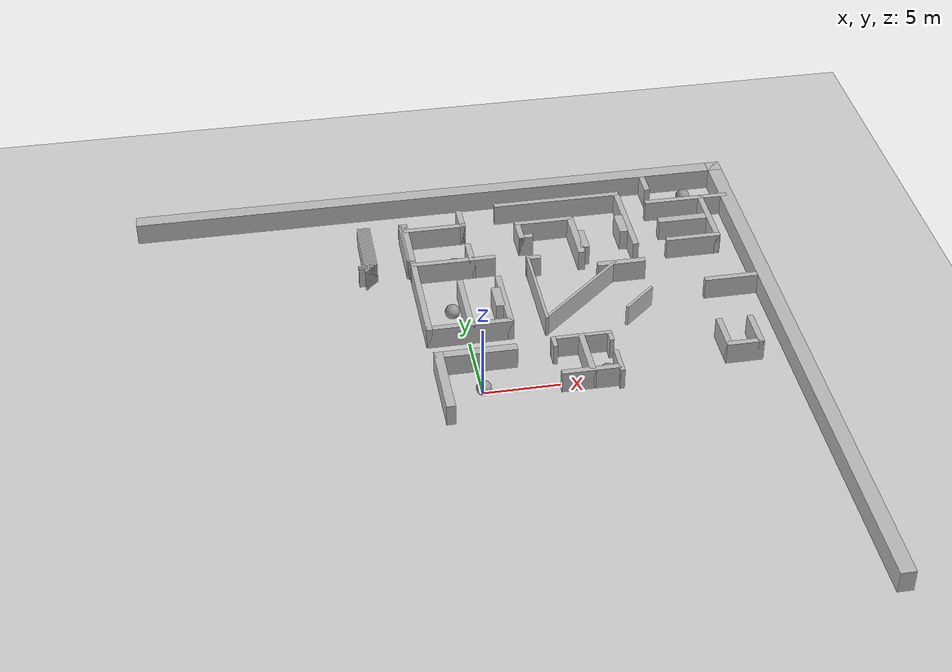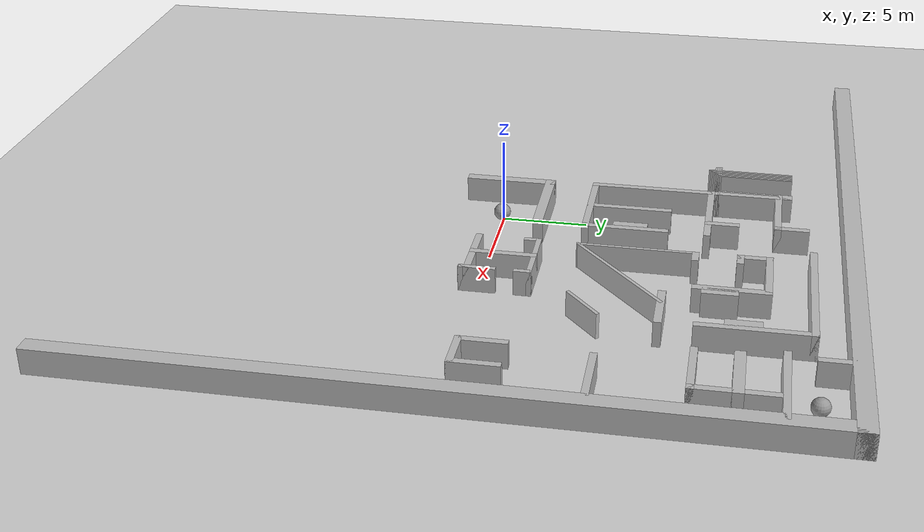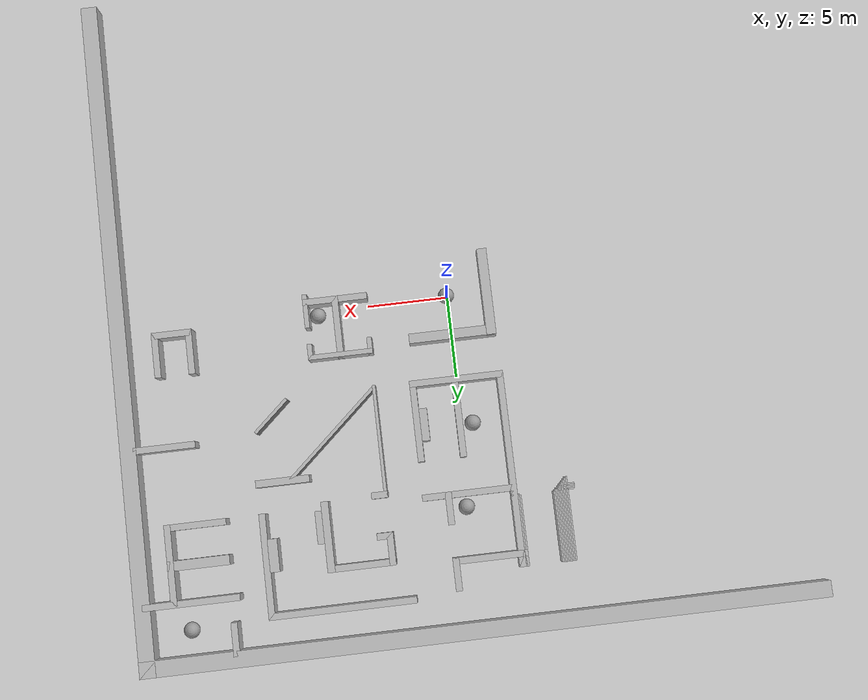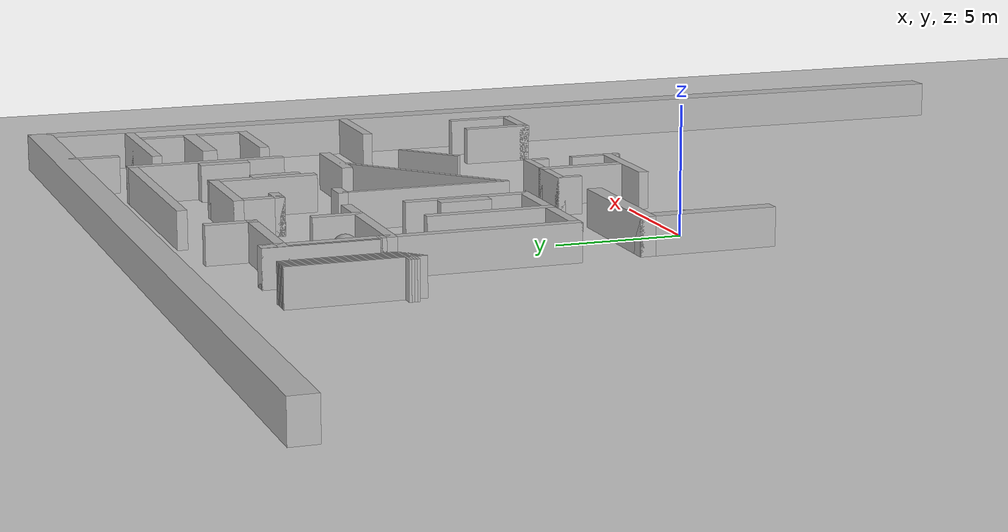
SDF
<sdf version="1.7">
 <world name="test_world">
  <model name="ground_plane">
   <static>1</static>
   <link name="link">
    <collision name="collision">
     <geometry><plane><normal>0 0 1</normal><size>100 100</size></plane></geometry>
    </collision>
    <visual name="visual">
     <geometry><plane><normal>0 0 1</normal><size>100 100</size></plane></geometry>
     <material>
      <script>
       <uri>file://media/materials/scripts/gazebo.material</uri>
       <name>__default__</name>
       <n>Gazebo/Grey</n>
      </script>
     </material>
    </visual>
   </link>
  </model>
  <model name="outer_top">
   <static>1</static>
   <pose>0 20.5 0.75 0 -0 0</pose>
   <link name="link">
    <collision name="collision"><geometry><box><size>42 1 1.5</size></box></geometry></collision>
    <visual name="visual">
     <geometry><box><size>42 1 1.5</size></box></geometry>
     <material>
      <script>
       <uri>file://media/materials/scripts/gazebo.material</uri>
       <name>__default__</name>
       <n>Gazebo/Grey</n>
      </script>
     </material>
    </visual>
   </link>
  </model>
  <model name="outer_right">
   <static>1</static>
   <pose>20.5 0 0.75 0 -0 0</pose>
   <link name="link">
    <collision name="collision"><geometry><box><size>1 42 1.5</size></box></geometry></collision>
    <visual name="visual">
     <geometry><box><size>1 42 1.5</size></box></geometry>
     <material>
      <script>
       <uri>file://media/materials/scripts/gazebo.material</uri>
       <name>__default__</name>
       <n>Gazebo/Grey</n>
      </script>
     </material>
    </visual>
   </link>
  </model>
  <model name="hw_17">
   <static>1</static>
   <pose>-5.9 12.4 0.75 0 -0 0</pose>
   <link name="link">
    <collision name="collision"><geometry><box><size>0.9 0.1 1.5</size></box></geometry></collision>
    <visual name="visual">
     <geometry><box><size>0.9 0.1 1.5</size></box></geometry>
     <material>
      <script>
       <uri>file://media/materials/scripts/gazebo.material</uri>
       <name>__default__</name>
       <n>Gazebo/Grey</n>
      </script>
     </material>
    </visual>
   </link>
  </model>
  <model name="hw_18">
   <static>1</static>
   <pose>-5.85 12.5 0.75 0 -0 0</pose>
   <link name="link">
    <collision name="collision"><geometry><box><size>1 0.1 1.5</size></box></geometry></collision>
    <visual name="visual">
     <geometry><box><size>1 0.1 1.5</size></box></geometry>
     <material>
      <script>
       <uri>file://media/materials/scripts/gazebo.material</uri>
       <name>__default__</name>
       <n>Gazebo/Grey</n>
      </script>
     </material>
    </visual>
   </link>
  </model>
  <model name="hw_19">
   <static>1</static>
   <pose>-5.8 12.6 0.75 0 -0 0</pose>
   <link name="link">
    <collision name="collision"><geometry><box><size>1.1 0.1 1.5</size></box></geometry></collision>
    <visual name="visual">
     <geometry><box><size>1.1 0.1 1.5</size></box></geometry>
     <material>
      <script>
       <uri>file://media/materials/scripts/gazebo.material</uri>
       <name>__default__</name>
       <n>Gazebo/Grey</n>
      </script>
     </material>
    </visual>
   </link>
  </model>
  <model name="hw_20">
   <static>1</static>
   <pose>-5.75 12.7 0.75 0 -0 0</pose>
   <link name="link">
    <collision name="collision"><geometry><box><size>1.2 0.1 1.5</size></box></geometry></collision>
    <visual name="visual">
     <geometry><box><size>1.2 0.1 1.5</size></box></geometry>
     <material>
      <script>
       <uri>file://media/materials/scripts/gazebo.material</uri>
       <name>__default__</name>
       <n>Gazebo/Grey</n>
      </script>
     </material>
    </visual>
   </link>
  </model>
  <model name="hw_21">
   <static>1</static>
   <pose>-2.75 16.75 0.75 0 -0 0</pose>
   <link name="link">
    <collision name="collision"><geometry><box><size>0.6 0.6 1.5</size></box></geometry></collision>
    <visual name="visual">
     <geometry><box><size>0.6 0.6 1.5</size></box></geometry>
     <material>
      <script>
       <uri>file://media/materials/scripts/gazebo.material</uri>
       <name>__default__</name>
       <n>Gazebo/Grey</n>
      </script>
     </material>
    </visual>
   </link>
  </model>
  <model name="hw_22">
   <static>1</static>
   <pose>-0.75 16.25 0.75 0 -0 0</pose>
   <link name="link">
    <collision name="collision"><geometry><box><size>4.6 0.4 1.5</size></box></geometry></collision>
    <visual name="visual">
     <geometry><box><size>4.6 0.4 1.5</size></box></geometry>
     <material>
      <script>
       <uri>file://media/materials/scripts/gazebo.material</uri>
       <name>__default__</name>
       <n>Gazebo/Grey</n>
      </script>
     </material>
    </visual>
   </link>
  </model>
  <model name="hw_26">
   <static>1</static>
   <pose>-2.7 12.7 0.75 0 -0 0</pose>
   <link name="link">
    <collision name="collision"><geometry><box><size>0.5 0.1 1.5</size></box></geometry></collision>
    <visual name="visual">
     <geometry><box><size>0.5 0.1 1.5</size></box></geometry>
     <material>
      <script>
       <uri>file://media/materials/scripts/gazebo.material</uri>
       <name>__default__</name>
       <n>Gazebo/Grey</n>
      </script>
     </material>
    </visual>
   </link>
  </model>
  <model name="hw_27">
   <static>1</static>
   <pose>-2.65 12.55 0.75 0 -0 0</pose>
   <link name="link">
    <collision name="collision"><geometry><box><size>0.4 0.2 1.5</size></box></geometry></collision>
    <visual name="visual">
     <geometry><box><size>0.4 0.2 1.5</size></box></geometry>
     <material>
      <script>
       <uri>file://media/materials/scripts/gazebo.material</uri>
       <name>__default__</name>
       <n>Gazebo/Grey</n>
      </script>
     </material>
    </visual>
   </link>
  </model>
  <model name="hw_28">
   <static>1</static>
   <pose>0.05 12.25 0.75 0 -0 0</pose>
   <link name="link">
    <collision name="collision"><geometry><box><size>5.8 0.4 1.5</size></box></geometry></collision>
    <visual name="visual">
     <geometry><box><size>5.8 0.4 1.5</size></box></geometry>
     <material>
      <script>
       <uri>file://media/materials/scripts/gazebo.material</uri>
       <name>__default__</name>
       <n>Gazebo/Grey</n>
      </script>
     </material>
    </visual>
   </link>
  </model>
  <model name="hw_29">
   <static>1</static>
   <pose>0.05 5.25 0.75 0 -0 0</pose>
   <link name="link">
    <collision name="collision"><geometry><box><size>5.8 0.4 1.5</size></box></geometry></collision>
    <visual name="visual">
     <geometry><box><size>5.8 0.4 1.5</size></box></geometry>
     <material>
      <script>
       <uri>file://media/materials/scripts/gazebo.material</uri>
       <name>__default__</name>
       <n>Gazebo/Grey</n>
      </script>
     </material>
    </visual>
   </link>
  </model>
  <model name="hw_30">
   <static>1</static>
   <pose>-0.05 2.45 0.75 0 -0 0</pose>
   <link name="link">
    <collision name="collision"><geometry><box><size>5.4 0.6 1.5</size></box></geometry></collision>
    <visual name="visual">
     <geometry><box><size>5.4 0.6 1.5</size></box></geometry>
     <material>
      <script>
       <uri>file://media/materials/scripts/gazebo.material</uri>
       <name>__default__</name>
       <n>Gazebo/Grey</n>
      </script>
     </material>
    </visual>
   </link>
  </model>
  <model name="hw_32">
   <static>1</static>
   <pose>8.45 18.25 0.75 0 -0 0</pose>
   <link name="link">
    <collision name="collision"><geometry><box><size>9 0.4 1.5</size></box></geometry></collision>
    <visual name="visual">
     <geometry><box><size>9 0.4 1.5</size></box></geometry>
     <material>
      <script>
       <uri>file://media/materials/scripts/gazebo.material</uri>
       <name>__default__</name>
       <n>Gazebo/Grey</n>
      </script>
     </material>
    </visual>
   </link>
  </model>
  <model name="hw_46">
   <static>1</static>
   <pose>5.45 14.25 0.75 0 -0 0</pose>
   <link name="link">
    <collision name="collision"><geometry><box><size>1 0.4 1.5</size></box></geometry></collision>
    <visual name="visual">
     <geometry><box><size>1 0.4 1.5</size></box></geometry>
     <material>
      <script>
       <uri>file://media/materials/scripts/gazebo.material</uri>
       <name>__default__</name>
       <n>Gazebo/Grey</n>
      </script>
     </material>
    </visual>
   </link>
  </model>
  <model name="hw_47">
   <static>1</static>
   <pose>6.95 2.9 0.75 0 -0 0</pose>
   <link name="link">
    <collision name="collision"><geometry><box><size>4 0.3 1.5</size></box></geometry></collision>
    <visual name="visual">
     <geometry><box><size>4 0.3 1.5</size></box></geometry>
     <material>
      <script>
       <uri>file://media/materials/scripts/gazebo.material</uri>
       <name>__default__</name>
       <n>Gazebo/Grey</n>
      </script>
     </material>
    </visual>
   </link>
  </model>
  <model name="hw_48">
   <static>1</static>
   <pose>6.95 -0.55 0.75 0 -0 0</pose>
   <link name="link">
    <collision name="collision"><geometry><box><size>4 0.4 1.5</size></box></geometry></collision>
    <visual name="visual">
     <geometry><box><size>4 0.4 1.5</size></box></geometry>
     <material>
      <script>
       <uri>file://media/materials/scripts/gazebo.material</uri>
       <name>__default__</name>
       <n>Gazebo/Grey</n>
      </script>
     </material>
    </visual>
   </link>
  </model>
  <model name="hw_52">
   <static>1</static>
   <pose>7 15.85 0.75 0 -0 0</pose>
   <link name="link">
    <collision name="collision"><geometry><box><size>4.1 0.4 1.5</size></box></geometry></collision>
    <visual name="visual">
     <geometry><box><size>4.1 0.4 1.5</size></box></geometry>
     <material>
      <script>
       <uri>file://media/materials/scripts/gazebo.material</uri>
       <name>__default__</name>
       <n>Gazebo/Grey</n>
      </script>
     </material>
    </visual>
   </link>
  </model>
  <model name="hw_104">
   <static>1</static>
   <pose>8.8 -0.9 0.75 0 -0 0</pose>
   <link name="link">
    <collision name="collision"><geometry><box><size>0.3 0.3 1.5</size></box></geometry></collision>
    <visual name="visual">
     <geometry><box><size>0.3 0.3 1.5</size></box></geometry>
     <material>
      <script>
       <uri>file://media/materials/scripts/gazebo.material</uri>
       <name>__default__</name>
       <n>Gazebo/Grey</n>
      </script>
     </material>
    </visual>
   </link>
  </model>
  <model name="hw_121">
   <static>1</static>
   <pose>11.3 10.2356 0.75 0 -0 0</pose>
   <link name="link">
    <collision name="collision"><geometry><box><size>3.3 0.447718 1.5</size></box></geometry></collision>
    <visual name="visual">
     <geometry><box><size>3.3 0.447718 1.5</size></box></geometry>
     <material>
      <script>
       <uri>file://media/materials/scripts/gazebo.material</uri>
       <name>__default__</name>
       <n>Gazebo/Grey</n>
      </script>
     </material>
    </visual>
   </link>
  </model>
  <model name="hw_125">
   <static>1</static>
   <pose>17.5122 16.85 0.75 0 -0 0</pose>
   <link name="link">
    <collision name="collision"><geometry><box><size>5.93657 0.4 1.5</size></box></geometry></collision>
    <visual name="visual">
     <geometry><box><size>5.93657 0.4 1.5</size></box></geometry>
     <material>
      <script>
       <uri>file://media/materials/scripts/gazebo.material</uri>
       <name>__default__</name>
       <n>Gazebo/Grey</n>
      </script>
     </material>
    </visual>
   </link>
  </model>
  <model name="hw_126">
   <static>1</static>
   <pose>16.85 14.55 0.75 0 -0 0</pose>
   <link name="link">
    <collision name="collision"><geometry><box><size>3.8 0.6 1.5</size></box></geometry></collision>
    <visual name="visual">
     <geometry><box><size>3.8 0.6 1.5</size></box></geometry>
     <material>
      <script>
       <uri>file://media/materials/scripts/gazebo.material</uri>
       <name>__default__</name>
       <n>Gazebo/Grey</n>
      </script>
     </material>
    </visual>
   </link>
  </model>
  <model name="hw_127">
   <static>1</static>
   <pose>16.85 12.25 0.75 0 -0 0</pose>
   <link name="link">
    <collision name="collision"><geometry><box><size>3.8 0.4 1.5</size></box></geometry></collision>
    <visual name="visual">
     <geometry><box><size>3.8 0.4 1.5</size></box></geometry>
     <material>
      <script>
       <uri>file://media/materials/scripts/gazebo.material</uri>
       <name>__default__</name>
       <n>Gazebo/Grey</n>
      </script>
     </material>
    </visual>
   </link>
  </model>
  <model name="hw_129">
   <static>1</static>
   <pose>17.2 0.45 0.75 0 -0 0</pose>
   <link name="link">
    <collision name="collision"><geometry><box><size>2.5 0.4 1.5</size></box></geometry></collision>
    <visual name="visual">
     <geometry><box><size>2.5 0.4 1.5</size></box></geometry>
     <material>
      <script>
       <uri>file://media/materials/scripts/gazebo.material</uri>
       <name>__default__</name>
       <n>Gazebo/Grey</n>
      </script>
     </material>
    </visual>
   </link>
  </model>
  <model name="vw_133">
   <static>1</static>
   <pose>12.75 15.25 0.75 0 -0 0</pose>
   <link name="link">
    <collision name="collision"><geometry><box><size>0.4 6.4 1.5</size></box></geometry></collision>
    <visual name="visual">
     <geometry><box><size>0.4 6.4 1.5</size></box></geometry>
     <material>
      <script>
       <uri>file://media/materials/scripts/gazebo.material</uri>
       <name>__default__</name>
       <n>Gazebo/Grey</n>
      </script>
     </material>
    </visual>
   </link>
  </model>
  <model name="vw_134">
   <static>1</static>
   <pose>1.35 17.05 0.75 0 -0 0</pose>
   <link name="link">
    <collision name="collision"><geometry><box><size>0.4 2 1.5</size></box></geometry></collision>
    <visual name="visual">
     <geometry><box><size>0.4 2 1.5</size></box></geometry>
     <material>
      <script>
       <uri>file://media/materials/scripts/gazebo.material</uri>
       <name>__default__</name>
       <n>Gazebo/Grey</n>
      </script>
     </material>
    </visual>
   </link>
  </model>
  <model name="vw_135">
   <static>1</static>
   <pose>-5.1 14.9 0.75 0 -0 0</pose>
   <link name="link">
    <collision name="collision"><geometry><box><size>0.1 4.3 1.5</size></box></geometry></collision>
    <visual name="visual">
     <geometry><box><size>0.1 4.3 1.5</size></box></geometry>
     <material>
      <script>
       <uri>file://media/materials/scripts/gazebo.material</uri>
       <name>__default__</name>
       <n>Gazebo/Grey</n>
      </script>
     </material>
    </visual>
   </link>
  </model>
  <model name="vw_136">
   <static>1</static>
   <pose>-3 14.9 0.75 0 -0 0</pose>
   <link name="link">
    <collision name="collision"><geometry><box><size>0.1 4.3 1.5</size></box></geometry></collision>
    <visual name="visual">
     <geometry><box><size>0.1 4.3 1.5</size></box></geometry>
     <material>
      <script>
       <uri>file://media/materials/scripts/gazebo.material</uri>
       <name>__default__</name>
       <n>Gazebo/Grey</n>
      </script>
     </material>
    </visual>
   </link>
  </model>
  <model name="vw_137">
   <static>1</static>
   <pose>-5.2 14.85 0.75 0 -0 0</pose>
   <link name="link">
    <collision name="collision"><geometry><box><size>0.1 4.4 1.5</size></box></geometry></collision>
    <visual name="visual">
     <geometry><box><size>0.1 4.4 1.5</size></box></geometry>
     <material>
      <script>
       <uri>file://media/materials/scripts/gazebo.material</uri>
       <name>__default__</name>
       <n>Gazebo/Grey</n>
      </script>
     </material>
    </visual>
   </link>
  </model>
  <model name="vw_138">
   <static>1</static>
   <pose>-2.9 14.85 0.75 0 -0 0</pose>
   <link name="link">
    <collision name="collision"><geometry><box><size>0.1 4.4 1.5</size></box></geometry></collision>
    <visual name="visual">
     <geometry><box><size>0.1 4.4 1.5</size></box></geometry>
     <material>
      <script>
       <uri>file://media/materials/scripts/gazebo.material</uri>
       <name>__default__</name>
       <n>Gazebo/Grey</n>
      </script>
     </material>
    </visual>
   </link>
  </model>
  <model name="vw_139">
   <static>1</static>
   <pose>-5.3 14.8 0.75 0 -0 0</pose>
   <link name="link">
    <collision name="collision"><geometry><box><size>0.1 4.5 1.5</size></box></geometry></collision>
    <visual name="visual">
     <geometry><box><size>0.1 4.5 1.5</size></box></geometry>
     <material>
      <script>
       <uri>file://media/materials/scripts/gazebo.material</uri>
       <name>__default__</name>
       <n>Gazebo/Grey</n>
      </script>
     </material>
    </visual>
   </link>
  </model>
  <model name="vw_140">
   <static>1</static>
   <pose>-5.4 14.75 0.75 0 -0 0</pose>
   <link name="link">
    <collision name="collision"><geometry><box><size>0.1 4.6 1.5</size></box></geometry></collision>
    <visual name="visual">
     <geometry><box><size>0.1 4.6 1.5</size></box></geometry>
     <material>
      <script>
       <uri>file://media/materials/scripts/gazebo.material</uri>
       <name>__default__</name>
       <n>Gazebo/Grey</n>
      </script>
     </material>
    </visual>
   </link>
  </model>
  <model name="vw_141">
   <static>1</static>
   <pose>-5.5 14.7 0.75 0 -0 0</pose>
   <link name="link">
    <collision name="collision"><geometry><box><size>0.1 4.7 1.5</size></box></geometry></collision>
    <visual name="visual">
     <geometry><box><size>0.1 4.7 1.5</size></box></geometry>
     <material>
      <script>
       <uri>file://media/materials/scripts/gazebo.material</uri>
       <name>__default__</name>
       <n>Gazebo/Grey</n>
      </script>
     </material>
    </visual>
   </link>
  </model>
  <model name="vw_142">
   <static>1</static>
   <pose>-5.6 14.65 0.75 0 -0 0</pose>
   <link name="link">
    <collision name="collision"><geometry><box><size>0.1 4.8 1.5</size></box></geometry></collision>
    <visual name="visual">
     <geometry><box><size>0.1 4.8 1.5</size></box></geometry>
     <material>
      <script>
       <uri>file://media/materials/scripts/gazebo.material</uri>
       <name>__default__</name>
       <n>Gazebo/Grey</n>
      </script>
     </material>
    </visual>
   </link>
  </model>
  <model name="vw_143">
   <static>1</static>
   <pose>-5.7 14.6 0.75 0 -0 0</pose>
   <link name="link">
    <collision name="collision"><geometry><box><size>0.1 4.9 1.5</size></box></geometry></collision>
    <visual name="visual">
     <geometry><box><size>0.1 4.9 1.5</size></box></geometry>
     <material>
      <script>
       <uri>file://media/materials/scripts/gazebo.material</uri>
       <name>__default__</name>
       <n>Gazebo/Grey</n>
      </script>
     </material>
    </visual>
   </link>
  </model>
  <model name="vw_144">
   <static>1</static>
   <pose>-5.8 14.55 0.75 0 -0 0</pose>
   <link name="link">
    <collision name="collision"><geometry><box><size>0.1 5 1.5</size></box></geometry></collision>
    <visual name="visual">
     <geometry><box><size>0.1 5 1.5</size></box></geometry>
     <material>
      <script>
       <uri>file://media/materials/scripts/gazebo.material</uri>
       <name>__default__</name>
       <n>Gazebo/Grey</n>
      </script>
     </material>
    </visual>
   </link>
  </model>
  <model name="vw_145">
   <static>1</static>
   <pose>18.55 14.55 0.75 0 -0 0</pose>
   <link name="link">
    <collision name="collision"><geometry><box><size>0.4 5 1.5</size></box></geometry></collision>
    <visual name="visual">
     <geometry><box><size>0.4 5 1.5</size></box></geometry>
     <material>
      <script>
       <uri>file://media/materials/scripts/gazebo.material</uri>
       <name>__default__</name>
       <n>Gazebo/Grey</n>
      </script>
     </material>
    </visual>
   </link>
  </model>
  <model name="vw_146">
   <static>1</static>
   <pose>-5.9 14.5 0.75 0 -0 0</pose>
   <link name="link">
    <collision name="collision"><geometry><box><size>0.1 5.1 1.5</size></box></geometry></collision>
    <visual name="visual">
     <geometry><box><size>0.1 5.1 1.5</size></box></geometry>
     <material>
      <script>
       <uri>file://media/materials/scripts/gazebo.material</uri>
       <name>__default__</name>
       <n>Gazebo/Grey</n>
      </script>
     </material>
    </visual>
   </link>
  </model>
  <model name="vw_149">
   <static>1</static>
   <pose>-2.65 11.05 0.75 0 -0 0</pose>
   <link name="link">
    <collision name="collision"><geometry><box><size>0.4 12 1.5</size></box></geometry></collision>
    <visual name="visual">
     <geometry><box><size>0.4 12 1.5</size></box></geometry>
     <material>
      <script>
       <uri>file://media/materials/scripts/gazebo.material</uri>
       <name>__default__</name>
       <n>Gazebo/Grey</n>
      </script>
     </material>
    </visual>
   </link>
  </model>
  <model name="vw_150">
   <static>1</static>
   <pose>5.15 15.05 0.75 0 -0 0</pose>
   <link name="link">
    <collision name="collision"><geometry><box><size>0.4 2 1.5</size></box></geometry></collision>
    <visual name="visual">
     <geometry><box><size>0.4 2 1.5</size></box></geometry>
     <material>
      <script>
       <uri>file://media/materials/scripts/gazebo.material</uri>
       <name>__default__</name>
       <n>Gazebo/Grey</n>
      </script>
     </material>
    </visual>
   </link>
  </model>
  <model name="vw_152">
   <static>1</static>
   <pose>8.9 13.9 0.75 0 -0 0</pose>
   <link name="link">
    <collision name="collision"><geometry><box><size>0.463946 4.3 1.5</size></box></geometry></collision>
    <visual name="visual">
     <geometry><box><size>0.463946 4.3 1.5</size></box></geometry>
     <material>
      <script>
       <uri>file://media/materials/scripts/gazebo.material</uri>
       <name>__default__</name>
       <n>Gazebo/Grey</n>
      </script>
     </material>
    </visual>
   </link>
  </model>
  <model name="vw_157">
   <static>1</static>
   <pose>1.35 13.05 0.75 0 -0 0</pose>
   <link name="link">
    <collision name="collision"><geometry><box><size>0.4 2 1.5</size></box></geometry></collision>
    <visual name="visual">
     <geometry><box><size>0.4 2 1.5</size></box></geometry>
     <material>
      <script>
       <uri>file://media/materials/scripts/gazebo.material</uri>
       <name>__default__</name>
       <n>Gazebo/Grey</n>
      </script>
     </material>
    </visual>
   </link>
  </model>
  <model name="vw_163">
   <static>1</static>
   <pose>5.14006 8.4 0.75 0 -0 0</pose>
   <link name="link">
    <collision name="collision"><geometry><box><size>0.2 6.7 1.5</size></box></geometry></collision>
    <visual name="visual">
     <geometry><box><size>0.2 6.7 1.5</size></box></geometry>
     <material>
      <script>
       <uri>file://media/materials/scripts/gazebo.material</uri>
       <name>__default__</name>
       <n>Gazebo/Grey</n>
      </script>
     </material>
    </visual>
   </link>
  </model>
  <model name="vw_182">
   <static>1</static>
   <pose>0.15 7.55 0.75 0 -0 0</pose>
   <link name="link">
    <collision name="collision"><geometry><box><size>0.4 5 1.5</size></box></geometry></collision>
    <visual name="visual">
     <geometry><box><size>0.4 5 1.5</size></box></geometry>
     <material>
      <script>
       <uri>file://media/materials/scripts/gazebo.material</uri>
       <name>__default__</name>
       <n>Gazebo/Grey</n>
      </script>
     </material>
    </visual>
   </link>
  </model>
  <model name="vw_183">
   <static>1</static>
   <pose>2.75 7.55 0.75 0 -0 0</pose>
   <link name="link">
    <collision name="collision"><geometry><box><size>0.4 5 1.5</size></box></geometry></collision>
    <visual name="visual">
     <geometry><box><size>0.4 5 1.5</size></box></geometry>
     <material>
      <script>
       <uri>file://media/materials/scripts/gazebo.material</uri>
       <name>__default__</name>
       <n>Gazebo/Grey</n>
      </script>
     </material>
    </visual>
   </link>
  </model>
  <model name="vw_226">
   <static>1</static>
   <pose>5.1 2.55 0.75 0 -0 0</pose>
   <link name="link">
    <collision name="collision"><geometry><box><size>0.3 1 1.5</size></box></geometry></collision>
    <visual name="visual">
     <geometry><box><size>0.3 1 1.5</size></box></geometry>
     <material>
      <script>
       <uri>file://media/materials/scripts/gazebo.material</uri>
       <name>__default__</name>
       <n>Gazebo/Grey</n>
      </script>
     </material>
    </visual>
   </link>
  </model>
  <model name="vw_227">
   <static>1</static>
   <pose>8.8 2.55 0.75 0 -0 0</pose>
   <link name="link">
    <collision name="collision"><geometry><box><size>0.3 1 1.5</size></box></geometry></collision>
    <visual name="visual">
     <geometry><box><size>0.3 1 1.5</size></box></geometry>
     <material>
      <script>
       <uri>file://media/materials/scripts/gazebo.material</uri>
       <name>__default__</name>
       <n>Gazebo/Grey</n>
      </script>
     </material>
    </visual>
   </link>
  </model>
  <model name="vw_229">
   <static>1</static>
   <pose>16.15 1.65 0.75 0 -0 0</pose>
   <link name="link">
    <collision name="collision"><geometry><box><size>0.4 2.8 1.5</size></box></geometry></collision>
    <visual name="visual">
     <geometry><box><size>0.4 2.8 1.5</size></box></geometry>
     <material>
      <script>
       <uri>file://media/materials/scripts/gazebo.material</uri>
       <name>__default__</name>
       <n>Gazebo/Grey</n>
      </script>
     </material>
    </visual>
   </link>
  </model>
  <model name="vw_230">
   <static>1</static>
   <pose>18.25 1.65 0.75 0 -0 0</pose>
   <link name="link">
    <collision name="collision"><geometry><box><size>0.4 2.8 1.5</size></box></geometry></collision>
    <visual name="visual">
     <geometry><box><size>0.4 2.8 1.5</size></box></geometry>
     <material>
      <script>
       <uri>file://media/materials/scripts/gazebo.material</uri>
       <name>__default__</name>
       <n>Gazebo/Grey</n>
      </script>
     </material>
    </visual>
   </link>
  </model>
  <model name="vw_231">
   <static>1</static>
   <pose>6.95 1.15 0.75 0 -0 0</pose>
   <link name="link">
    <collision name="collision"><geometry><box><size>0.4 3.8 1.5</size></box></geometry></collision>
    <visual name="visual">
     <geometry><box><size>0.4 3.8 1.5</size></box></geometry>
     <material>
      <script>
       <uri>file://media/materials/scripts/gazebo.material</uri>
       <name>__default__</name>
       <n>Gazebo/Grey</n>
      </script>
     </material>
    </visual>
   </link>
  </model>
  <model name="vw_235">
   <static>1</static>
   <pose>-2.45 0.05 0.75 0 -0 0</pose>
   <link name="link">
    <collision name="collision"><geometry><box><size>0.6 5.4 1.5</size></box></geometry></collision>
    <visual name="visual">
     <geometry><box><size>0.6 5.4 1.5</size></box></geometry>
     <material>
      <script>
       <uri>file://media/materials/scripts/gazebo.material</uri>
       <name>__default__</name>
       <n>Gazebo/Grey</n>
      </script>
     </material>
    </visual>
   </link>
  </model>
  <model name="vw_237">
   <static>1</static>
   <pose>8.8 0 0.75 0 -0 0</pose>
   <link name="link">
    <collision name="collision"><geometry><box><size>0.3 2.1 1.5</size></box></geometry></collision>
    <visual name="visual">
     <geometry><box><size>0.3 2.1 1.5</size></box></geometry>
     <material>
      <script>
       <uri>file://media/materials/scripts/gazebo.material</uri>
       <name>__default__</name>
       <n>Gazebo/Grey</n>
      </script>
     </material>
    </visual>
   </link>
  </model>
  <model name="diagonal_wall">
   <static>1</static>
   <pose>8.01781 7.73019 0.75 0 -0 0.729246</pose>
   <link name="link">
    <collision name="collision"><geometry><box><size>7.73029 0.2 1.5</size></box></geometry></collision>
    <visual name="visual">
     <geometry><box><size>7.73029 0.2 1.5</size></box></geometry>
     <material>
      <script>
       <uri>file://media/materials/scripts/gazebo.material</uri>
       <name>__default__</name>
       <n>Gazebo/Grey</n>
      </script>
     </material>
    </visual>
   </link>
  </model>
  <model name="hw_46_clone">
   <static>1</static>
   <pose>5.51512 11.757 0.75 0 -0 0</pose>
   <link name="link">
    <collision name="collision"><geometry><box><size>1 0.4 1.5</size></box></geometry></collision>
    <visual name="visual">
     <geometry><box><size>1 0.4 1.5</size></box></geometry>
     <material>
      <script>
       <uri>file://media/materials/scripts/gazebo.material</uri>
       <name>__default__</name>
       <n>Gazebo/Grey</n>
      </script>
     </material>
    </visual>
   </link>
  </model>
  <model name="hw_127_clone">
   <static>1</static>
   <pose>18.2761 7.37466 0.75 0 -0 0</pose>
   <link name="link">
    <collision name="collision"><geometry><box><size>3.8 0.4 1.5</size></box></geometry></collision>
    <visual name="visual">
     <geometry><box><size>3.8 0.4 1.5</size></box></geometry>
     <material>
      <script>
       <uri>file://media/materials/scripts/gazebo.material</uri>
       <name>__default__</name>
       <n>Gazebo/Grey</n>
      </script>
     </material>
    </visual>
   </link>
  </model>
  <model name="vw_145_clone">
   <static>1</static>
   <pose>15.0647 19.3267 0.75 0 -0 0</pose>
   <link name="link">
    <collision name="collision"><geometry><box><size>0.4 2.01045 1.5</size></box></geometry></collision>
    <visual name="visual">
     <geometry><box><size>0.4 2.01045 1.5</size></box></geometry>
     <material>
      <script>
       <uri>file://media/materials/scripts/gazebo.material</uri>
       <name>__default__</name>
       <n>Gazebo/Grey</n>
      </script>
     </material>
    </visual>
   </link>
  </model>
  <model name="unit_sphere_1">
   <pose>0.050522 -0.095919 0.5 0 -0 0</pose>
   <link name="link">
    <inertial>
     <mass>1</mass>
     <inertia><ixx>0.1</ixx><ixy>0</ixy><ixz>0</ixz><iyy>0.1</iyy><iyz>0</iyz><izz>0.1</izz></inertia>
    </inertial>
    <collision name="collision"><geometry><sphere><radius>0.5</radius></sphere></geometry></collision>
    <visual name="visual">
     <geometry><sphere><radius>0.5</radius></sphere></geometry>
     <material>
      <script><name>Gazebo/Grey</name><uri>file://media/materials/scripts/gazebo.material</uri></script>
     </material>
    </visual>
   </link>
  </model>
  <model name="unit_sphere_3">
   <pose>17.7775 18.5247 0.5 0 -0 0</pose>
   <link name="link">
    <inertial>
     <mass>1</mass>
     <inertia><ixx>0.1</ixx><ixy>0</ixy><ixz>0</ixz><iyy>0.1</iyy><iyz>0</iyz><izz>0.1</izz></inertia>
    </inertial>
    <collision name="collision"><geometry><sphere><radius>0.5</radius></sphere></geometry></collision>
    <visual name="visual">
     <geometry><sphere><radius>0.5</radius></sphere></geometry>
     <material>
      <script><name>Gazebo/Grey</name><uri>file://media/materials/scripts/gazebo.material</uri></script>
     </material>
    </visual>
   </link>
  </model>
  <model name="unit_sphere_5">
   <pose>0.30313 13.0709 0.5 0 -0 0</pose>
   <link name="link">
    <inertial>
     <mass>1</mass>
     <inertia><ixx>0.1</ixx><ixy>0</ixy><ixz>0</ixz><iyy>0.1</iyy><iyz>0</iyz><izz>0.1</izz></inertia>
    </inertial>
    <collision name="collision"><geometry><sphere><radius>0.5</radius></sphere></geometry></collision>
    <visual name="visual">
     <geometry><sphere><radius>0.5</radius></sphere></geometry>
     <material>
      <script><name>Gazebo/Grey</name><uri>file://media/materials/scripts/gazebo.material</uri></script>
     </material>
    </visual>
   </link>
  </model>
  <model name="vw_258_clone_1">
   <static>1</static>
   <pose>2.35806 7.81578 0.75 0 -0 0</pose>
   <link name="link">
    <collision name="collision"><geometry><box><size>0.6 2 1.5</size></box></geometry></collision>
    <visual name="visual">
     <geometry><box><size>0.6 2 1.5</size></box></geometry>
     <material>
      <script>
       <uri>file://media/materials/scripts/gazebo.material</uri>
       <name>__default__</name>
       <n>Gazebo/Grey</n>
      </script>
     </material>
    </visual>
   </link>
  </model>
  <model name="vw_258_clone_2">
   <static>1</static>
   <pose>12.2864 14.6231 0.75 0 -0 0</pose>
   <link name="link">
    <collision name="collision"><geometry><box><size>0.6 2 1.5</size></box></geometry></collision>
    <visual name="visual">
     <geometry><box><size>0.6 2 1.5</size></box></geometry>
     <material>
      <script>
       <uri>file://media/materials/scripts/gazebo.material</uri>
       <name>__default__</name>
       <n>Gazebo/Grey</n>
      </script>
     </material>
    </visual>
   </link>
  </model>
  <model name="vw_258_clone_3">
   <static>1</static>
   <pose>9.24601 13.2809 0.75 0 -0 0</pose>
   <link name="link">
    <collision name="collision"><geometry><box><size>0.6 2 1.5</size></box></geometry></collision>
    <visual name="visual">
     <geometry><box><size>0.6 2 1.5</size></box></geometry>
     <material>
      <script>
       <uri>file://media/materials/scripts/gazebo.material</uri>
       <name>__default__</name>
       <n>Gazebo/Grey</n>
      </script>
     </material>
    </visual>
   </link>
  </model>
  <model name="diagonal_wall_clone">
   <static>1</static>
   <pose>11.5984 6.19979 0.75 0 -0 0.729246</pose>
   <link name="link">
    <collision name="collision"><geometry><box><size>2.8087 0.2 1.5</size></box></geometry></collision>
    <visual name="visual">
     <geometry><box><size>2.8087 0.2 1.5</size></box></geometry>
     <material>
      <script>
       <uri>file://media/materials/scripts/gazebo.material</uri>
       <name>__default__</name>
       <n>Gazebo/Grey</n>
      </script>
     </material>
    </visual>
   </link>
  </model>
  <model name="unit_sphere_clone">
   <pose>8.14402 0.253355 0.5 0 -0.011981 0</pose>
   <link name="link">
    <inertial>
     <mass>1</mass>
     <inertia><ixx>0.1</ixx><ixy>0</ixy><ixz>0</ixz><iyy>0.1</iyy><iyz>0</iyz><izz>0.1</izz></inertia>
    </inertial>
    <collision name="collision"><geometry><sphere><radius>0.5</radius></sphere></geometry></collision>
    <visual name="visual">
     <geometry><sphere><radius>0.5</radius></sphere></geometry>
     <material>
      <script><name>Gazebo/Grey</name><uri>file://media/materials/scripts/gazebo.material</uri></script>
     </material>
    </visual>
   </link>
  </model>
  <model name="unit_sphere_5_clone">
   <pose>-0.670627 7.994 0.5 0 -0 0</pose>
   <link name="link">
    <inertial>
     <mass>1</mass>
     <inertia><ixx>0.1</ixx><ixy>0</ixy><ixz>0</ixz><iyy>0.1</iyy><iyz>0</iyz><izz>0.1</izz></inertia>
    </inertial>
    <collision name="collision"><geometry><sphere><radius>0.5</radius></sphere></geometry></collision>
    <visual name="visual">
     <geometry><sphere><radius>0.5</radius></sphere></geometry>
     <material>
      <script><name>Gazebo/Grey</name><uri>file://media/materials/scripts/gazebo.material</uri></script>
     </material>
    </visual>
   </link>
  </model>
 </world>
</sdf>
